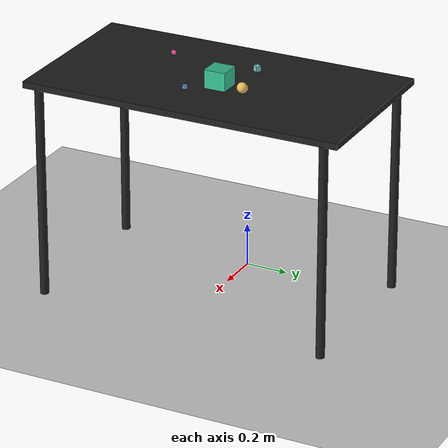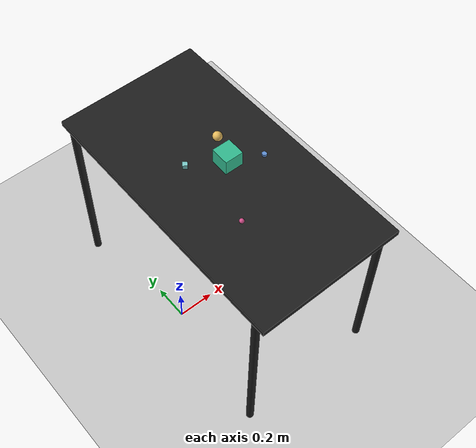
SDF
<?xml version="1.0" ?>
<sdf version="1.6">
  <world name="arm_world">
    <plugin filename="gz-sim-physics-system" name="gz::sim::systems::Physics">
      <engine>
        <filename>libgz-physics-bullet-featherstone-plugin.so</filename>
      </engine>
    </plugin>
    <plugin filename="gz-sim-user-commands-system" name="gz::sim::systems::UserCommands"/>
    <plugin filename="gz-sim-scene-broadcaster-system" name="gz::sim::systems::SceneBroadcaster"/>
    <plugin filename="gz-sim-sensors-system" name="gz::sim::systems::Sensors">
      <render_engine>ogre2</render_engine>
    </plugin>
    <gravity>0.0 0.0 -9.8</gravity>
    <scene>
      <shadows>false</shadows>
    </scene>
    <gui>
      <camera name="user_camera">
        <pose>0.75 -0.75 1.4 0 0.29 2.21</pose>
      </camera>
    </gui>
    <include>
      <uri>https://fuel.gazebosim.org/1.0/OpenRobotics/models/Sun</uri>
    </include>
    <model name="table">
      <static>true</static>
      <include>
        <uri>model://table</uri>
      </include>
      <pose>0.29 0 0 0 0 1.5708</pose>
    </model>
    <model name="ground_plane">
      <static>true</static>
      <link name="link">
        <collision name="collision">
          <geometry>
            <plane>
              <normal>0 0 1</normal>
            </plane>
          </geometry>
          <surface>
            <friction>
              <ode>
                <mu>1.0</mu>
                <mu2>1.0</mu2>
              </ode>
            </friction>
          </surface>
        </collision>
        <visual name="visual">
          <geometry>
            <plane>
              <normal>0 0 1</normal>
              <size>100 100</size>
            </plane>
          </geometry>
          <material>
            <ambient>0.8 0.8 0.8 1</ambient>
            <diffuse>0.8 0.8 0.8 1</diffuse>
            <specular>0.8 0.8 0.8 1</specular>
          </material>
        </visual>
      </link>
    </model>
    <model name="cylinder_s_0">
      <pose>0.498 -0.056 1.05 0 0 4.88</pose>
      <link name="cylinder_s_0_link">
        <collision name="cylinder_s_0_collision">
          <geometry>
            <cylinder>
              <radius>0.0125</radius>
              <length>0.0125</length>
            </cylinder>
          </geometry>
        </collision>
        <visual name="cylinder_s_0_visual">
          <geometry>
            <cylinder>
              <radius>0.0125</radius>
              <length>0.0125</length>
            </cylinder>
          </geometry>
          <material>
            <ambient>0.38 0.57 0.84 1</ambient>
            <diffuse>0.38 0.57 0.84 1</diffuse>
          </material>
        </visual>
        <velocity_decay>
          <linear>1</linear>
          <angular>1</angular>
        </velocity_decay>
      </link>
    </model>
    <model name="sphere_s_1">
      <pose>0.169 -0.281 1.05 0 0 1.6</pose>
      <link name="sphere_s_1_link">
        <collision name="sphere_s_1_collision">
          <geometry>
            <sphere>
              <radius>0.0125</radius>
            </sphere>
          </geometry>
        </collision>
        <visual name="sphere_s_1_visual">
          <geometry>
            <sphere>
              <radius>0.0125</radius>
            </sphere>
          </geometry>
          <material>
            <ambient>0.83 0.31 0.55 1</ambient>
            <diffuse>0.83 0.31 0.55 1</diffuse>
          </material>
        </visual>
        <velocity_decay>
          <linear>1</linear>
          <angular>1</angular>
        </velocity_decay>
      </link>
    </model>
    <model name="sphere_m_2">
      <pose>0.399 0.17 1.05 0 0 1.56</pose>
      <link name="sphere_m_2_link">
        <collision name="sphere_m_2_collision">
          <geometry>
            <sphere>
              <radius>0.025</radius>
            </sphere>
          </geometry>
        </collision>
        <visual name="sphere_m_2_visual">
          <geometry>
            <sphere>
              <radius>0.025</radius>
            </sphere>
          </geometry>
          <material>
            <ambient>0.9 0.73 0.36 1</ambient>
            <diffuse>0.9 0.73 0.36 1</diffuse>
          </material>
        </visual>
        <velocity_decay>
          <linear>1</linear>
          <angular>1</angular>
        </velocity_decay>
      </link>
    </model>
    <model name="cube_l_3">
      <pose>0.35 0.036 1.05 0 0 1.56</pose>
      <link name="cube_l_3_link">
        <collision name="cube_l_3_collision">
          <geometry>
            <box>
              <size>0.1 0.1 0.1</size>
            </box>
          </geometry>
        </collision>
        <visual name="cube_l_3_visual">
          <geometry>
            <box>
              <size>0.1 0.1 0.1</size>
            </box>
          </geometry>
          <material>
            <ambient>0.2 0.74 0.57 1</ambient>
            <diffuse>0.2 0.74 0.57 1</diffuse>
          </material>
        </visual>
        <velocity_decay>
          <linear>1</linear>
          <angular>1</angular>
        </velocity_decay>
      </link>
    </model>
    <model name="cube_s_4">
      <pose>0.169 0.128 1.05 0 0 2.55</pose>
      <link name="cube_s_4_link">
        <collision name="cube_s_4_collision">
          <geometry>
            <box>
              <size>0.025 0.025 0.025</size>
            </box>
          </geometry>
        </collision>
        <visual name="cube_s_4_visual">
          <geometry>
            <box>
              <size>0.025 0.025 0.025</size>
            </box>
          </geometry>
          <material>
            <ambient>0.49 0.81 0.8 1</ambient>
            <diffuse>0.49 0.81 0.8 1</diffuse>
          </material>
        </visual>
        <velocity_decay>
          <linear>1</linear>
          <angular>1</angular>
        </velocity_decay>
      </link>
    </model>
  </world>
</sdf>

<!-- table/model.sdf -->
<sdf version="1.5">
  <model name="table">
    <static>true</static>
    <link name="link">
      <collision name="surface">
        <pose>0 0 1.0 0 0 0</pose>
        <geometry>
          <box>
            <size>1.5 0.8 0.03</size>
          </box>
        </geometry>
        <surface>
          <friction>
            <ode>
              <mu>0.6</mu>
              <mu2>0.6</mu2>
            </ode>
          </friction>
        </surface>
      </collision>
      <visual name="surface">
        <pose>0 0 1.0 0 0 0</pose>
        <geometry>
          <box>
            <size>1.5 0.8 0.03</size>
          </box>
        </geometry>
        <material>
          <script>
            <uri>file://media/materials/scripts/gazebo.material</uri>
            <name>Gazebo/Black</name>
          </script>
        </material>
      </visual>
      <collision name="front_left_leg">
        <pose>0.68 0.38 0.5 0 0 0</pose>
        <geometry>
          <cylinder>
            <radius>0.02</radius>
            <length>1.0</length>
          </cylinder>
        </geometry>
      </collision>
      <visual name="front_left_leg">
        <pose>0.68 0.38 0.5 0 0 0</pose>
        <geometry>
          <cylinder>
            <radius>0.02</radius>
            <length>1.0</length>
          </cylinder>
        </geometry>
        <material>
          <script>
            <uri>file://media/materials/scripts/gazebo.material</uri>
            <name>Gazebo/Black</name>
          </script>
        </material>
      </visual>
      <collision name="front_right_leg">
        <pose>0.68 -0.38 0.5 0 0 0</pose>
        <geometry>
          <cylinder>
            <radius>0.02</radius>
            <length>1.0</length>
          </cylinder>
        </geometry>
      </collision>
      <visual name="front_right_leg">
        <pose>0.68 -0.38 0.5 0 0 0</pose>
        <geometry>
          <cylinder>
            <radius>0.02</radius>
            <length>1.0</length>
          </cylinder>
        </geometry>
        <material>
          <script>
            <uri>file://media/materials/scripts/gazebo.material</uri>
            <name>Gazebo/Black</name>
          </script>
        </material>
      </visual>
      <collision name="back_right_leg">
        <pose>-0.68 -0.38 0.5 0 0 0</pose>
        <geometry>
          <cylinder>
            <radius>0.02</radius>
            <length>1.0</length>
          </cylinder>
        </geometry>
      </collision>
      <visual name="back_right_leg">
        <pose>-0.68 -0.38 0.5 0 0 0</pose>
        <geometry>
          <cylinder>
            <radius>0.02</radius>
            <length>1.0</length>
          </cylinder>
        </geometry>
        <material>
          <script>
            <uri>file://media/materials/scripts/gazebo.material</uri>
            <name>Gazebo/Black</name>
          </script>
        </material>
      </visual>
      <collision name="back_left_leg">
        <pose>-0.68 0.38 0.5 0 0 0</pose>
        <geometry>
          <cylinder>
            <radius>0.02</radius>
            <length>1.0</length>
          </cylinder>
        </geometry>
      </collision>
      <visual name="back_left_leg">
        <pose>-0.68 0.38 0.5 0 0 0</pose>
        <geometry>
          <cylinder>
            <radius>0.02</radius>
            <length>1.0</length>
          </cylinder>
        </geometry>
        <material>
          <script>
            <uri>file://media/materials/scripts/gazebo.material</uri>
            <name>Gazebo/Black</name>
          </script>
        </material>
      </visual>
    </link>
  </model>
</sdf>
